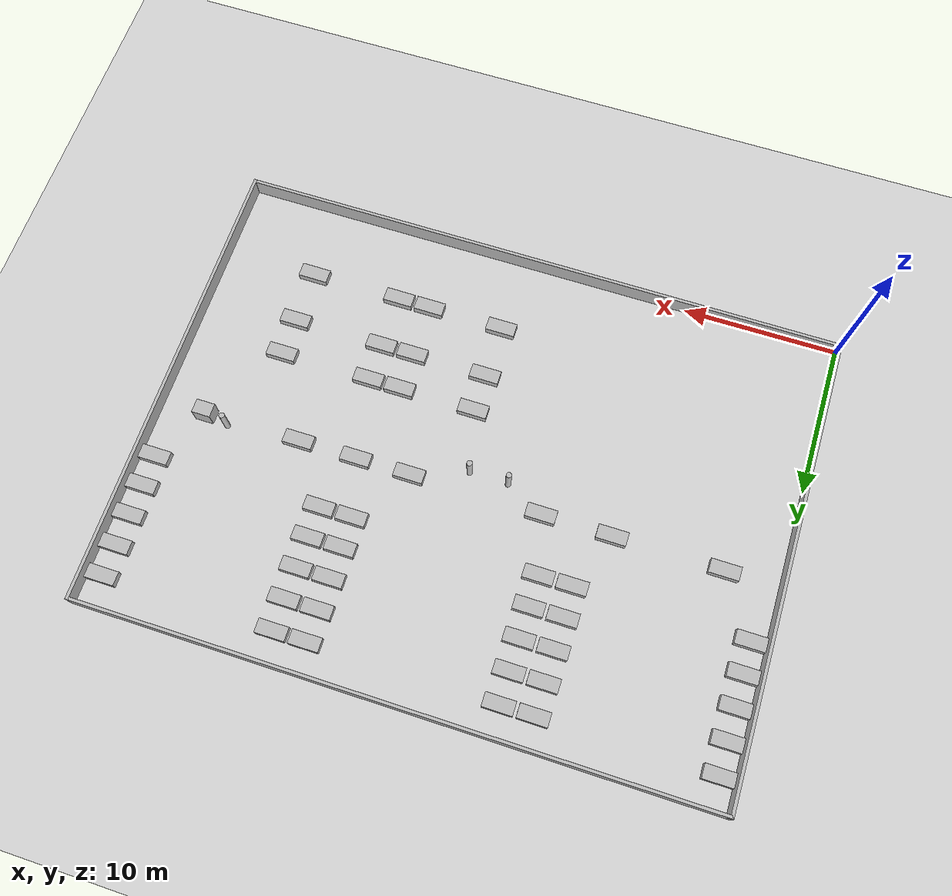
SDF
<?xml version="1.0"?>
<sdf version="1.9">
  <world name="hospital">
    <plugin filename="gz-sim-physics-system" name="gz::sim::systems::Physics"/>
    <plugin filename="gz-sim-sensors-system" name="gz::sim::systems::Sensors">
      <render_engine>ogre2</render_engine>
    </plugin>
    <plugin filename="gz-sim-user-commands-system" name="gz::sim::systems::UserCommands"/>
    <plugin filename="gz-sim-scene-broadcaster-system" name="gz::sim::systems::SceneBroadcaster"/>
    <plugin filename="gz-sim-contact-system" name="gz::sim::systems::Contact"/>

    <physics type="dart">
      <max_step_size>0.01</max_step_size>
      <real_time_factor>0</real_time_factor>
      <real_time_update_rate>0</real_time_update_rate>
    </physics>

    <scene>
      <ambient>0.52 0.53 0.56 1</ambient>
      <background>0.70 0.76 0.84 1</background>
      <shadows>true</shadows>
      <grid>false</grid>
    </scene>

    <light type="directional" name="sun">
      <pose>12 10 14 0 0 0</pose>
      <diffuse>0.70 0.69 0.66 1</diffuse>
      <specular>0.16 0.16 0.16 1</specular>
      <direction>-0.45 0.30 -0.84</direction>
      <cast_shadows>true</cast_shadows>
    </light>

    <model name="ground_plane">
      <static>true</static>
      <link name="link">
        <collision name="collision">
          <geometry><plane><normal>0 0 1</normal><size>200 200</size></plane></geometry>
        </collision>
        <visual name="visual">
          <pose>0 0 -0.03 0 0 0</pose>
          <cast_shadows>false</cast_shadows>
          <geometry><plane><normal>0 0 1</normal><size>200 200</size></plane></geometry>
          <material>
          <ambient>0.425 0.425 0.425 1.0</ambient>
          <diffuse>0.850 0.850 0.850 1.0</diffuse>
          <specular>0.14 0.14 0.14 1</specular>
          <emissive>0.000 0.000 0.000 1</emissive>
        </material>
        </visual>
      </link>
    </model>

    <model name="wall_0">
      <static>true</static>
      <pose>20.0 0.0 0.6 0 0 0</pose>
      <link name="link">
        <collision name="c"><geometry><box><size>40.2 0.2 1.2</size></box></geometry></collision>
        <visual name="v">
          <cast_shadows>true</cast_shadows>
          <geometry><box><size>40.2 0.2 1.2</size></box></geometry>
          <material>
          <ambient>0.375 0.375 0.375 1.0</ambient>
          <diffuse>0.750 0.750 0.750 1.0</diffuse>
          <specular>0.14 0.14 0.14 1</specular>
          <emissive>0.000 0.000 0.000 1</emissive>
        </material>
        </visual>
      </link>
    </model>
    <model name="wall_1">
      <static>true</static>
      <pose>20.0 30.0 0.6 0 0 0</pose>
      <link name="link">
        <collision name="c"><geometry><box><size>40.2 0.20000000000000284 1.2</size></box></geometry></collision>
        <visual name="v">
          <cast_shadows>true</cast_shadows>
          <geometry><box><size>40.2 0.20000000000000284 1.2</size></box></geometry>
          <material>
          <ambient>0.375 0.375 0.375 1.0</ambient>
          <diffuse>0.750 0.750 0.750 1.0</diffuse>
          <specular>0.14 0.14 0.14 1</specular>
          <emissive>0.000 0.000 0.000 1</emissive>
        </material>
        </visual>
      </link>
    </model>
    <model name="wall_2">
      <static>true</static>
      <pose>0.0 15.0 0.6 0 0 0</pose>
      <link name="link">
        <collision name="c"><geometry><box><size>0.2 30.200000000000003 1.2</size></box></geometry></collision>
        <visual name="v">
          <cast_shadows>true</cast_shadows>
          <geometry><box><size>0.2 30.200000000000003 1.2</size></box></geometry>
          <material>
          <ambient>0.375 0.375 0.375 1.0</ambient>
          <diffuse>0.750 0.750 0.750 1.0</diffuse>
          <specular>0.14 0.14 0.14 1</specular>
          <emissive>0.000 0.000 0.000 1</emissive>
        </material>
        </visual>
      </link>
    </model>
    <model name="wall_3">
      <static>true</static>
      <pose>40.0 15.0 0.6 0 0 0</pose>
      <link name="link">
        <collision name="c"><geometry><box><size>0.20000000000000284 30.200000000000003 1.2</size></box></geometry></collision>
        <visual name="v">
          <cast_shadows>true</cast_shadows>
          <geometry><box><size>0.20000000000000284 30.200000000000003 1.2</size></box></geometry>
          <material>
          <ambient>0.375 0.375 0.375 1.0</ambient>
          <diffuse>0.750 0.750 0.750 1.0</diffuse>
          <specular>0.14 0.14 0.14 1</specular>
          <emissive>0.000 0.000 0.000 1</emissive>
        </material>
        </visual>
      </link>
    </model>
    <model name="bed_0">
      <static>true</static>
      <pose>1.05 20.0 0.25 0 0 0</pose>
      <link name="link">
        <collision name="c"><geometry><box><size>1.9 0.8999999999999986 0.5</size></box></geometry></collision>
        <visual name="v">
          <cast_shadows>true</cast_shadows>
          <geometry><box><size>1.9 0.8999999999999986 0.5</size></box></geometry>
          <material>
          <ambient>0.375 0.375 0.375 1.0</ambient>
          <diffuse>0.750 0.750 0.750 1.0</diffuse>
          <specular>0.14 0.14 0.14 1</specular>
          <emissive>0.000 0.000 0.000 1</emissive>
        </material>
        </visual>
      </link>
    </model>
    <model name="bed_1">
      <static>true</static>
      <pose>11.95 20.0 0.25 0 0 0</pose>
      <link name="link">
        <collision name="c"><geometry><box><size>1.9000000000000004 0.8999999999999986 0.5</size></box></geometry></collision>
        <visual name="v">
          <cast_shadows>true</cast_shadows>
          <geometry><box><size>1.9000000000000004 0.8999999999999986 0.5</size></box></geometry>
          <material>
          <ambient>0.375 0.375 0.375 1.0</ambient>
          <diffuse>0.750 0.750 0.750 1.0</diffuse>
          <specular>0.14 0.14 0.14 1</specular>
          <emissive>0.000 0.000 0.000 1</emissive>
        </material>
        </visual>
      </link>
    </model>
    <model name="bed_2">
      <static>true</static>
      <pose>1.05 24.0 0.25 0 0 0</pose>
      <link name="link">
        <collision name="c"><geometry><box><size>1.9 0.8999999999999986 0.5</size></box></geometry></collision>
        <visual name="v">
          <cast_shadows>true</cast_shadows>
          <geometry><box><size>1.9 0.8999999999999986 0.5</size></box></geometry>
          <material>
          <ambient>0.375 0.375 0.375 1.0</ambient>
          <diffuse>0.750 0.750 0.750 1.0</diffuse>
          <specular>0.14 0.14 0.14 1</specular>
          <emissive>0.000 0.000 0.000 1</emissive>
        </material>
        </visual>
      </link>
    </model>
    <model name="bed_3">
      <static>true</static>
      <pose>11.95 24.0 0.25 0 0 0</pose>
      <link name="link">
        <collision name="c"><geometry><box><size>1.9000000000000004 0.8999999999999986 0.5</size></box></geometry></collision>
        <visual name="v">
          <cast_shadows>true</cast_shadows>
          <geometry><box><size>1.9000000000000004 0.8999999999999986 0.5</size></box></geometry>
          <material>
          <ambient>0.375 0.375 0.375 1.0</ambient>
          <diffuse>0.750 0.750 0.750 1.0</diffuse>
          <specular>0.14 0.14 0.14 1</specular>
          <emissive>0.000 0.000 0.000 1</emissive>
        </material>
        </visual>
      </link>
    </model>
    <model name="bed_4">
      <static>true</static>
      <pose>1.05 28.0 0.25 0 0 0</pose>
      <link name="link">
        <collision name="c"><geometry><box><size>1.9 0.8999999999999986 0.5</size></box></geometry></collision>
        <visual name="v">
          <cast_shadows>true</cast_shadows>
          <geometry><box><size>1.9 0.8999999999999986 0.5</size></box></geometry>
          <material>
          <ambient>0.375 0.375 0.375 1.0</ambient>
          <diffuse>0.750 0.750 0.750 1.0</diffuse>
          <specular>0.14 0.14 0.14 1</specular>
          <emissive>0.000 0.000 0.000 1</emissive>
        </material>
        </visual>
      </link>
    </model>
    <model name="bed_5">
      <static>true</static>
      <pose>11.95 28.0 0.25 0 0 0</pose>
      <link name="link">
        <collision name="c"><geometry><box><size>1.9000000000000004 0.8999999999999986 0.5</size></box></geometry></collision>
        <visual name="v">
          <cast_shadows>true</cast_shadows>
          <geometry><box><size>1.9000000000000004 0.8999999999999986 0.5</size></box></geometry>
          <material>
          <ambient>0.375 0.375 0.375 1.0</ambient>
          <diffuse>0.750 0.750 0.750 1.0</diffuse>
          <specular>0.14 0.14 0.14 1</specular>
          <emissive>0.000 0.000 0.000 1</emissive>
        </material>
        </visual>
      </link>
    </model>
    <model name="bed_6">
      <static>true</static>
      <pose>14.05 20.0 0.25 0 0 0</pose>
      <link name="link">
        <collision name="c"><geometry><box><size>1.9000000000000004 0.8999999999999986 0.5</size></box></geometry></collision>
        <visual name="v">
          <cast_shadows>true</cast_shadows>
          <geometry><box><size>1.9000000000000004 0.8999999999999986 0.5</size></box></geometry>
          <material>
          <ambient>0.375 0.375 0.375 1.0</ambient>
          <diffuse>0.750 0.750 0.750 1.0</diffuse>
          <specular>0.14 0.14 0.14 1</specular>
          <emissive>0.000 0.000 0.000 1</emissive>
        </material>
        </visual>
      </link>
    </model>
    <model name="bed_7">
      <static>true</static>
      <pose>25.95 20.0 0.25 0 0 0</pose>
      <link name="link">
        <collision name="c"><geometry><box><size>1.8999999999999986 0.8999999999999986 0.5</size></box></geometry></collision>
        <visual name="v">
          <cast_shadows>true</cast_shadows>
          <geometry><box><size>1.8999999999999986 0.8999999999999986 0.5</size></box></geometry>
          <material>
          <ambient>0.375 0.375 0.375 1.0</ambient>
          <diffuse>0.750 0.750 0.750 1.0</diffuse>
          <specular>0.14 0.14 0.14 1</specular>
          <emissive>0.000 0.000 0.000 1</emissive>
        </material>
        </visual>
      </link>
    </model>
    <model name="bed_8">
      <static>true</static>
      <pose>14.05 24.0 0.25 0 0 0</pose>
      <link name="link">
        <collision name="c"><geometry><box><size>1.9000000000000004 0.8999999999999986 0.5</size></box></geometry></collision>
        <visual name="v">
          <cast_shadows>true</cast_shadows>
          <geometry><box><size>1.9000000000000004 0.8999999999999986 0.5</size></box></geometry>
          <material>
          <ambient>0.375 0.375 0.375 1.0</ambient>
          <diffuse>0.750 0.750 0.750 1.0</diffuse>
          <specular>0.14 0.14 0.14 1</specular>
          <emissive>0.000 0.000 0.000 1</emissive>
        </material>
        </visual>
      </link>
    </model>
    <model name="bed_9">
      <static>true</static>
      <pose>25.95 24.0 0.25 0 0 0</pose>
      <link name="link">
        <collision name="c"><geometry><box><size>1.8999999999999986 0.8999999999999986 0.5</size></box></geometry></collision>
        <visual name="v">
          <cast_shadows>true</cast_shadows>
          <geometry><box><size>1.8999999999999986 0.8999999999999986 0.5</size></box></geometry>
          <material>
          <ambient>0.375 0.375 0.375 1.0</ambient>
          <diffuse>0.750 0.750 0.750 1.0</diffuse>
          <specular>0.14 0.14 0.14 1</specular>
          <emissive>0.000 0.000 0.000 1</emissive>
        </material>
        </visual>
      </link>
    </model>
    <model name="bed_10">
      <static>true</static>
      <pose>14.05 28.0 0.25 0 0 0</pose>
      <link name="link">
        <collision name="c"><geometry><box><size>1.9000000000000004 0.8999999999999986 0.5</size></box></geometry></collision>
        <visual name="v">
          <cast_shadows>true</cast_shadows>
          <geometry><box><size>1.9000000000000004 0.8999999999999986 0.5</size></box></geometry>
          <material>
          <ambient>0.375 0.375 0.375 1.0</ambient>
          <diffuse>0.750 0.750 0.750 1.0</diffuse>
          <specular>0.14 0.14 0.14 1</specular>
          <emissive>0.000 0.000 0.000 1</emissive>
        </material>
        </visual>
      </link>
    </model>
    <model name="bed_11">
      <static>true</static>
      <pose>25.95 28.0 0.25 0 0 0</pose>
      <link name="link">
        <collision name="c"><geometry><box><size>1.8999999999999986 0.8999999999999986 0.5</size></box></geometry></collision>
        <visual name="v">
          <cast_shadows>true</cast_shadows>
          <geometry><box><size>1.8999999999999986 0.8999999999999986 0.5</size></box></geometry>
          <material>
          <ambient>0.375 0.375 0.375 1.0</ambient>
          <diffuse>0.750 0.750 0.750 1.0</diffuse>
          <specular>0.14 0.14 0.14 1</specular>
          <emissive>0.000 0.000 0.000 1</emissive>
        </material>
        </visual>
      </link>
    </model>
    <model name="bed_12">
      <static>true</static>
      <pose>28.05 20.0 0.25 0 0 0</pose>
      <link name="link">
        <collision name="c"><geometry><box><size>1.8999999999999986 0.8999999999999986 0.5</size></box></geometry></collision>
        <visual name="v">
          <cast_shadows>true</cast_shadows>
          <geometry><box><size>1.8999999999999986 0.8999999999999986 0.5</size></box></geometry>
          <material>
          <ambient>0.375 0.375 0.375 1.0</ambient>
          <diffuse>0.750 0.750 0.750 1.0</diffuse>
          <specular>0.14 0.14 0.14 1</specular>
          <emissive>0.000 0.000 0.000 1</emissive>
        </material>
        </visual>
      </link>
    </model>
    <model name="bed_13">
      <static>true</static>
      <pose>38.95 20.0 0.25 0 0 0</pose>
      <link name="link">
        <collision name="c"><geometry><box><size>1.8999999999999986 0.8999999999999986 0.5</size></box></geometry></collision>
        <visual name="v">
          <cast_shadows>true</cast_shadows>
          <geometry><box><size>1.8999999999999986 0.8999999999999986 0.5</size></box></geometry>
          <material>
          <ambient>0.375 0.375 0.375 1.0</ambient>
          <diffuse>0.750 0.750 0.750 1.0</diffuse>
          <specular>0.14 0.14 0.14 1</specular>
          <emissive>0.000 0.000 0.000 1</emissive>
        </material>
        </visual>
      </link>
    </model>
    <model name="bed_14">
      <static>true</static>
      <pose>28.05 24.0 0.25 0 0 0</pose>
      <link name="link">
        <collision name="c"><geometry><box><size>1.8999999999999986 0.8999999999999986 0.5</size></box></geometry></collision>
        <visual name="v">
          <cast_shadows>true</cast_shadows>
          <geometry><box><size>1.8999999999999986 0.8999999999999986 0.5</size></box></geometry>
          <material>
          <ambient>0.375 0.375 0.375 1.0</ambient>
          <diffuse>0.750 0.750 0.750 1.0</diffuse>
          <specular>0.14 0.14 0.14 1</specular>
          <emissive>0.000 0.000 0.000 1</emissive>
        </material>
        </visual>
      </link>
    </model>
    <model name="bed_15">
      <static>true</static>
      <pose>38.95 24.0 0.25 0 0 0</pose>
      <link name="link">
        <collision name="c"><geometry><box><size>1.8999999999999986 0.8999999999999986 0.5</size></box></geometry></collision>
        <visual name="v">
          <cast_shadows>true</cast_shadows>
          <geometry><box><size>1.8999999999999986 0.8999999999999986 0.5</size></box></geometry>
          <material>
          <ambient>0.375 0.375 0.375 1.0</ambient>
          <diffuse>0.750 0.750 0.750 1.0</diffuse>
          <specular>0.14 0.14 0.14 1</specular>
          <emissive>0.000 0.000 0.000 1</emissive>
        </material>
        </visual>
      </link>
    </model>
    <model name="bed_16">
      <static>true</static>
      <pose>28.05 28.0 0.25 0 0 0</pose>
      <link name="link">
        <collision name="c"><geometry><box><size>1.8999999999999986 0.8999999999999986 0.5</size></box></geometry></collision>
        <visual name="v">
          <cast_shadows>true</cast_shadows>
          <geometry><box><size>1.8999999999999986 0.8999999999999986 0.5</size></box></geometry>
          <material>
          <ambient>0.375 0.375 0.375 1.0</ambient>
          <diffuse>0.750 0.750 0.750 1.0</diffuse>
          <specular>0.14 0.14 0.14 1</specular>
          <emissive>0.000 0.000 0.000 1</emissive>
        </material>
        </visual>
      </link>
    </model>
    <model name="bed_17">
      <static>true</static>
      <pose>38.95 28.0 0.25 0 0 0</pose>
      <link name="link">
        <collision name="c"><geometry><box><size>1.8999999999999986 0.8999999999999986 0.5</size></box></geometry></collision>
        <visual name="v">
          <cast_shadows>true</cast_shadows>
          <geometry><box><size>1.8999999999999986 0.8999999999999986 0.5</size></box></geometry>
          <material>
          <ambient>0.375 0.375 0.375 1.0</ambient>
          <diffuse>0.750 0.750 0.750 1.0</diffuse>
          <specular>0.14 0.14 0.14 1</specular>
          <emissive>0.000 0.000 0.000 1</emissive>
        </material>
        </visual>
      </link>
    </model>
    <model name="bed_18">
      <static>true</static>
      <pose>21.05 5.0 0.25 0 0 0</pose>
      <link name="link">
        <collision name="c"><geometry><box><size>1.8999999999999986 0.9000000000000004 0.5</size></box></geometry></collision>
        <visual name="v">
          <cast_shadows>true</cast_shadows>
          <geometry><box><size>1.8999999999999986 0.9000000000000004 0.5</size></box></geometry>
          <material>
          <ambient>0.375 0.375 0.375 1.0</ambient>
          <diffuse>0.750 0.750 0.750 1.0</diffuse>
          <specular>0.14 0.14 0.14 1</specular>
          <emissive>0.000 0.000 0.000 1</emissive>
        </material>
        </visual>
      </link>
    </model>
    <model name="bed_19">
      <static>true</static>
      <pose>25.95 5.0 0.25 0 0 0</pose>
      <link name="link">
        <collision name="c"><geometry><box><size>1.8999999999999986 0.9000000000000004 0.5</size></box></geometry></collision>
        <visual name="v">
          <cast_shadows>true</cast_shadows>
          <geometry><box><size>1.8999999999999986 0.9000000000000004 0.5</size></box></geometry>
          <material>
          <ambient>0.375 0.375 0.375 1.0</ambient>
          <diffuse>0.750 0.750 0.750 1.0</diffuse>
          <specular>0.14 0.14 0.14 1</specular>
          <emissive>0.000 0.000 0.000 1</emissive>
        </material>
        </visual>
      </link>
    </model>
    <model name="bed_20">
      <static>true</static>
      <pose>21.05 8.5 0.25 0 0 0</pose>
      <link name="link">
        <collision name="c"><geometry><box><size>1.8999999999999986 0.8999999999999986 0.5</size></box></geometry></collision>
        <visual name="v">
          <cast_shadows>true</cast_shadows>
          <geometry><box><size>1.8999999999999986 0.8999999999999986 0.5</size></box></geometry>
          <material>
          <ambient>0.375 0.375 0.375 1.0</ambient>
          <diffuse>0.750 0.750 0.750 1.0</diffuse>
          <specular>0.14 0.14 0.14 1</specular>
          <emissive>0.000 0.000 0.000 1</emissive>
        </material>
        </visual>
      </link>
    </model>
    <model name="bed_21">
      <static>true</static>
      <pose>25.95 8.5 0.25 0 0 0</pose>
      <link name="link">
        <collision name="c"><geometry><box><size>1.8999999999999986 0.8999999999999986 0.5</size></box></geometry></collision>
        <visual name="v">
          <cast_shadows>true</cast_shadows>
          <geometry><box><size>1.8999999999999986 0.8999999999999986 0.5</size></box></geometry>
          <material>
          <ambient>0.375 0.375 0.375 1.0</ambient>
          <diffuse>0.750 0.750 0.750 1.0</diffuse>
          <specular>0.14 0.14 0.14 1</specular>
          <emissive>0.000 0.000 0.000 1</emissive>
        </material>
        </visual>
      </link>
    </model>
    <model name="bed_22">
      <static>true</static>
      <pose>28.05 5.0 0.25 0 0 0</pose>
      <link name="link">
        <collision name="c"><geometry><box><size>1.8999999999999986 0.9000000000000004 0.5</size></box></geometry></collision>
        <visual name="v">
          <cast_shadows>true</cast_shadows>
          <geometry><box><size>1.8999999999999986 0.9000000000000004 0.5</size></box></geometry>
          <material>
          <ambient>0.375 0.375 0.375 1.0</ambient>
          <diffuse>0.750 0.750 0.750 1.0</diffuse>
          <specular>0.14 0.14 0.14 1</specular>
          <emissive>0.000 0.000 0.000 1</emissive>
        </material>
        </visual>
      </link>
    </model>
    <model name="bed_23">
      <static>true</static>
      <pose>33.95 5.0 0.25 0 0 0</pose>
      <link name="link">
        <collision name="c"><geometry><box><size>1.8999999999999986 0.9000000000000004 0.5</size></box></geometry></collision>
        <visual name="v">
          <cast_shadows>true</cast_shadows>
          <geometry><box><size>1.8999999999999986 0.9000000000000004 0.5</size></box></geometry>
          <material>
          <ambient>0.375 0.375 0.375 1.0</ambient>
          <diffuse>0.750 0.750 0.750 1.0</diffuse>
          <specular>0.14 0.14 0.14 1</specular>
          <emissive>0.000 0.000 0.000 1</emissive>
        </material>
        </visual>
      </link>
    </model>
    <model name="bed_24">
      <static>true</static>
      <pose>28.05 8.5 0.25 0 0 0</pose>
      <link name="link">
        <collision name="c"><geometry><box><size>1.8999999999999986 0.8999999999999986 0.5</size></box></geometry></collision>
        <visual name="v">
          <cast_shadows>true</cast_shadows>
          <geometry><box><size>1.8999999999999986 0.8999999999999986 0.5</size></box></geometry>
          <material>
          <ambient>0.375 0.375 0.375 1.0</ambient>
          <diffuse>0.750 0.750 0.750 1.0</diffuse>
          <specular>0.14 0.14 0.14 1</specular>
          <emissive>0.000 0.000 0.000 1</emissive>
        </material>
        </visual>
      </link>
    </model>
    <model name="bed_25">
      <static>true</static>
      <pose>33.95 8.5 0.25 0 0 0</pose>
      <link name="link">
        <collision name="c"><geometry><box><size>1.8999999999999986 0.8999999999999986 0.5</size></box></geometry></collision>
        <visual name="v">
          <cast_shadows>true</cast_shadows>
          <geometry><box><size>1.8999999999999986 0.8999999999999986 0.5</size></box></geometry>
          <material>
          <ambient>0.375 0.375 0.375 1.0</ambient>
          <diffuse>0.750 0.750 0.750 1.0</diffuse>
          <specular>0.14 0.14 0.14 1</specular>
          <emissive>0.000 0.000 0.000 1</emissive>
        </material>
        </visual>
      </link>
    </model>
    <model name="bed_26">
      <static>true</static>
      <pose>15.0 16.3 0.25 0 0 0</pose>
      <link name="link">
        <collision name="c"><geometry><box><size>1.8999999999999986 0.9000000000000004 0.5</size></box></geometry></collision>
        <visual name="v">
          <cast_shadows>true</cast_shadows>
          <geometry><box><size>1.8999999999999986 0.9000000000000004 0.5</size></box></geometry>
          <material>
          <ambient>0.375 0.375 0.375 1.0</ambient>
          <diffuse>0.750 0.750 0.750 1.0</diffuse>
          <specular>0.14 0.14 0.14 1</specular>
          <emissive>0.000 0.000 0.000 1</emissive>
        </material>
        </visual>
      </link>
    </model>
    <model name="bed_27">
      <static>true</static>
      <pose>23.5 16.3 0.25 0 0 0</pose>
      <link name="link">
        <collision name="c"><geometry><box><size>1.8999999999999986 0.9000000000000004 0.5</size></box></geometry></collision>
        <visual name="v">
          <cast_shadows>true</cast_shadows>
          <geometry><box><size>1.8999999999999986 0.9000000000000004 0.5</size></box></geometry>
          <material>
          <ambient>0.375 0.375 0.375 1.0</ambient>
          <diffuse>0.750 0.750 0.750 1.0</diffuse>
          <specular>0.14 0.14 0.14 1</specular>
          <emissive>0.000 0.000 0.000 1</emissive>
        </material>
        </visual>
      </link>
    </model>
    <model name="bed_28">
      <static>true</static>
      <pose>3.5 16.3 0.25 0 0 0</pose>
      <link name="link">
        <collision name="c"><geometry><box><size>1.9000000000000004 0.9000000000000004 0.5</size></box></geometry></collision>
        <visual name="v">
          <cast_shadows>true</cast_shadows>
          <geometry><box><size>1.9000000000000004 0.9000000000000004 0.5</size></box></geometry>
          <material>
          <ambient>0.375 0.375 0.375 1.0</ambient>
          <diffuse>0.750 0.750 0.750 1.0</diffuse>
          <specular>0.14 0.14 0.14 1</specular>
          <emissive>0.000 0.000 0.000 1</emissive>
        </material>
        </visual>
      </link>
    </model>
    <model name="bed_29">
      <static>true</static>
      <pose>10.5 16.3 0.25 0 0 0</pose>
      <link name="link">
        <collision name="c"><geometry><box><size>1.8999999999999986 0.9000000000000004 0.5</size></box></geometry></collision>
        <visual name="v">
          <cast_shadows>true</cast_shadows>
          <geometry><box><size>1.8999999999999986 0.9000000000000004 0.5</size></box></geometry>
          <material>
          <ambient>0.375 0.375 0.375 1.0</ambient>
          <diffuse>0.750 0.750 0.750 1.0</diffuse>
          <specular>0.14 0.14 0.14 1</specular>
          <emissive>0.000 0.000 0.000 1</emissive>
        </material>
        </visual>
      </link>
    </model>
    <model name="bed_30">
      <static>true</static>
      <pose>27.0 16.3 0.25 0 0 0</pose>
      <link name="link">
        <collision name="c"><geometry><box><size>1.8999999999999986 0.9000000000000004 0.5</size></box></geometry></collision>
        <visual name="v">
          <cast_shadows>true</cast_shadows>
          <geometry><box><size>1.8999999999999986 0.9000000000000004 0.5</size></box></geometry>
          <material>
          <ambient>0.375 0.375 0.375 1.0</ambient>
          <diffuse>0.750 0.750 0.750 1.0</diffuse>
          <specular>0.14 0.14 0.14 1</specular>
          <emissive>0.000 0.000 0.000 1</emissive>
        </material>
        </visual>
      </link>
    </model>
    <model name="bed_31">
      <static>true</static>
      <pose>30.8 16.3 0.25 0 0 0</pose>
      <link name="link">
        <collision name="c"><geometry><box><size>1.8999999999999986 0.9000000000000004 0.5</size></box></geometry></collision>
        <visual name="v">
          <cast_shadows>true</cast_shadows>
          <geometry><box><size>1.8999999999999986 0.9000000000000004 0.5</size></box></geometry>
          <material>
          <ambient>0.375 0.375 0.375 1.0</ambient>
          <diffuse>0.750 0.750 0.750 1.0</diffuse>
          <specular>0.14 0.14 0.14 1</specular>
          <emissive>0.000 0.000 0.000 1</emissive>
        </material>
        </visual>
      </link>
    </model>
    <model name="bed_32">
      <static>true</static>
      <pose>1.05 22.0 0.25 0 0 0</pose>
      <link name="link">
        <collision name="c"><geometry><box><size>1.9 0.8999999999999986 0.5</size></box></geometry></collision>
        <visual name="v">
          <cast_shadows>true</cast_shadows>
          <geometry><box><size>1.9 0.8999999999999986 0.5</size></box></geometry>
          <material>
          <ambient>0.375 0.375 0.375 1.0</ambient>
          <diffuse>0.750 0.750 0.750 1.0</diffuse>
          <specular>0.14 0.14 0.14 1</specular>
          <emissive>0.000 0.000 0.000 1</emissive>
        </material>
        </visual>
      </link>
    </model>
    <model name="bed_33">
      <static>true</static>
      <pose>11.95 22.0 0.25 0 0 0</pose>
      <link name="link">
        <collision name="c"><geometry><box><size>1.9000000000000004 0.8999999999999986 0.5</size></box></geometry></collision>
        <visual name="v">
          <cast_shadows>true</cast_shadows>
          <geometry><box><size>1.9000000000000004 0.8999999999999986 0.5</size></box></geometry>
          <material>
          <ambient>0.375 0.375 0.375 1.0</ambient>
          <diffuse>0.750 0.750 0.750 1.0</diffuse>
          <specular>0.14 0.14 0.14 1</specular>
          <emissive>0.000 0.000 0.000 1</emissive>
        </material>
        </visual>
      </link>
    </model>
    <model name="bed_34">
      <static>true</static>
      <pose>1.05 26.0 0.25 0 0 0</pose>
      <link name="link">
        <collision name="c"><geometry><box><size>1.9 0.8999999999999986 0.5</size></box></geometry></collision>
        <visual name="v">
          <cast_shadows>true</cast_shadows>
          <geometry><box><size>1.9 0.8999999999999986 0.5</size></box></geometry>
          <material>
          <ambient>0.375 0.375 0.375 1.0</ambient>
          <diffuse>0.750 0.750 0.750 1.0</diffuse>
          <specular>0.14 0.14 0.14 1</specular>
          <emissive>0.000 0.000 0.000 1</emissive>
        </material>
        </visual>
      </link>
    </model>
    <model name="bed_35">
      <static>true</static>
      <pose>11.95 26.0 0.25 0 0 0</pose>
      <link name="link">
        <collision name="c"><geometry><box><size>1.9000000000000004 0.8999999999999986 0.5</size></box></geometry></collision>
        <visual name="v">
          <cast_shadows>true</cast_shadows>
          <geometry><box><size>1.9000000000000004 0.8999999999999986 0.5</size></box></geometry>
          <material>
          <ambient>0.375 0.375 0.375 1.0</ambient>
          <diffuse>0.750 0.750 0.750 1.0</diffuse>
          <specular>0.14 0.14 0.14 1</specular>
          <emissive>0.000 0.000 0.000 1</emissive>
        </material>
        </visual>
      </link>
    </model>
    <model name="bed_36">
      <static>true</static>
      <pose>14.05 22.0 0.25 0 0 0</pose>
      <link name="link">
        <collision name="c"><geometry><box><size>1.9000000000000004 0.8999999999999986 0.5</size></box></geometry></collision>
        <visual name="v">
          <cast_shadows>true</cast_shadows>
          <geometry><box><size>1.9000000000000004 0.8999999999999986 0.5</size></box></geometry>
          <material>
          <ambient>0.375 0.375 0.375 1.0</ambient>
          <diffuse>0.750 0.750 0.750 1.0</diffuse>
          <specular>0.14 0.14 0.14 1</specular>
          <emissive>0.000 0.000 0.000 1</emissive>
        </material>
        </visual>
      </link>
    </model>
    <model name="bed_37">
      <static>true</static>
      <pose>25.95 22.0 0.25 0 0 0</pose>
      <link name="link">
        <collision name="c"><geometry><box><size>1.8999999999999986 0.8999999999999986 0.5</size></box></geometry></collision>
        <visual name="v">
          <cast_shadows>true</cast_shadows>
          <geometry><box><size>1.8999999999999986 0.8999999999999986 0.5</size></box></geometry>
          <material>
          <ambient>0.375 0.375 0.375 1.0</ambient>
          <diffuse>0.750 0.750 0.750 1.0</diffuse>
          <specular>0.14 0.14 0.14 1</specular>
          <emissive>0.000 0.000 0.000 1</emissive>
        </material>
        </visual>
      </link>
    </model>
    <model name="bed_38">
      <static>true</static>
      <pose>14.05 26.0 0.25 0 0 0</pose>
      <link name="link">
        <collision name="c"><geometry><box><size>1.9000000000000004 0.8999999999999986 0.5</size></box></geometry></collision>
        <visual name="v">
          <cast_shadows>true</cast_shadows>
          <geometry><box><size>1.9000000000000004 0.8999999999999986 0.5</size></box></geometry>
          <material>
          <ambient>0.375 0.375 0.375 1.0</ambient>
          <diffuse>0.750 0.750 0.750 1.0</diffuse>
          <specular>0.14 0.14 0.14 1</specular>
          <emissive>0.000 0.000 0.000 1</emissive>
        </material>
        </visual>
      </link>
    </model>
    <model name="bed_39">
      <static>true</static>
      <pose>25.95 26.0 0.25 0 0 0</pose>
      <link name="link">
        <collision name="c"><geometry><box><size>1.8999999999999986 0.8999999999999986 0.5</size></box></geometry></collision>
        <visual name="v">
          <cast_shadows>true</cast_shadows>
          <geometry><box><size>1.8999999999999986 0.8999999999999986 0.5</size></box></geometry>
          <material>
          <ambient>0.375 0.375 0.375 1.0</ambient>
          <diffuse>0.750 0.750 0.750 1.0</diffuse>
          <specular>0.14 0.14 0.14 1</specular>
          <emissive>0.000 0.000 0.000 1</emissive>
        </material>
        </visual>
      </link>
    </model>
    <model name="bed_40">
      <static>true</static>
      <pose>28.05 22.0 0.25 0 0 0</pose>
      <link name="link">
        <collision name="c"><geometry><box><size>1.8999999999999986 0.8999999999999986 0.5</size></box></geometry></collision>
        <visual name="v">
          <cast_shadows>true</cast_shadows>
          <geometry><box><size>1.8999999999999986 0.8999999999999986 0.5</size></box></geometry>
          <material>
          <ambient>0.375 0.375 0.375 1.0</ambient>
          <diffuse>0.750 0.750 0.750 1.0</diffuse>
          <specular>0.14 0.14 0.14 1</specular>
          <emissive>0.000 0.000 0.000 1</emissive>
        </material>
        </visual>
      </link>
    </model>
    <model name="bed_41">
      <static>true</static>
      <pose>38.95 22.0 0.25 0 0 0</pose>
      <link name="link">
        <collision name="c"><geometry><box><size>1.8999999999999986 0.8999999999999986 0.5</size></box></geometry></collision>
        <visual name="v">
          <cast_shadows>true</cast_shadows>
          <geometry><box><size>1.8999999999999986 0.8999999999999986 0.5</size></box></geometry>
          <material>
          <ambient>0.375 0.375 0.375 1.0</ambient>
          <diffuse>0.750 0.750 0.750 1.0</diffuse>
          <specular>0.14 0.14 0.14 1</specular>
          <emissive>0.000 0.000 0.000 1</emissive>
        </material>
        </visual>
      </link>
    </model>
    <model name="bed_42">
      <static>true</static>
      <pose>28.05 26.0 0.25 0 0 0</pose>
      <link name="link">
        <collision name="c"><geometry><box><size>1.8999999999999986 0.8999999999999986 0.5</size></box></geometry></collision>
        <visual name="v">
          <cast_shadows>true</cast_shadows>
          <geometry><box><size>1.8999999999999986 0.8999999999999986 0.5</size></box></geometry>
          <material>
          <ambient>0.375 0.375 0.375 1.0</ambient>
          <diffuse>0.750 0.750 0.750 1.0</diffuse>
          <specular>0.14 0.14 0.14 1</specular>
          <emissive>0.000 0.000 0.000 1</emissive>
        </material>
        </visual>
      </link>
    </model>
    <model name="bed_43">
      <static>true</static>
      <pose>38.95 26.0 0.25 0 0 0</pose>
      <link name="link">
        <collision name="c"><geometry><box><size>1.8999999999999986 0.8999999999999986 0.5</size></box></geometry></collision>
        <visual name="v">
          <cast_shadows>true</cast_shadows>
          <geometry><box><size>1.8999999999999986 0.8999999999999986 0.5</size></box></geometry>
          <material>
          <ambient>0.375 0.375 0.375 1.0</ambient>
          <diffuse>0.750 0.750 0.750 1.0</diffuse>
          <specular>0.14 0.14 0.14 1</specular>
          <emissive>0.000 0.000 0.000 1</emissive>
        </material>
        </visual>
      </link>
    </model>
    <model name="bed_44">
      <static>true</static>
      <pose>21.05 11.0 0.25 0 0 0</pose>
      <link name="link">
        <collision name="c"><geometry><box><size>1.8999999999999986 0.8999999999999986 0.5</size></box></geometry></collision>
        <visual name="v">
          <cast_shadows>true</cast_shadows>
          <geometry><box><size>1.8999999999999986 0.8999999999999986 0.5</size></box></geometry>
          <material>
          <ambient>0.375 0.375 0.375 1.0</ambient>
          <diffuse>0.750 0.750 0.750 1.0</diffuse>
          <specular>0.14 0.14 0.14 1</specular>
          <emissive>0.000 0.000 0.000 1</emissive>
        </material>
        </visual>
      </link>
    </model>
    <model name="bed_45">
      <static>true</static>
      <pose>25.95 11.0 0.25 0 0 0</pose>
      <link name="link">
        <collision name="c"><geometry><box><size>1.8999999999999986 0.8999999999999986 0.5</size></box></geometry></collision>
        <visual name="v">
          <cast_shadows>true</cast_shadows>
          <geometry><box><size>1.8999999999999986 0.8999999999999986 0.5</size></box></geometry>
          <material>
          <ambient>0.375 0.375 0.375 1.0</ambient>
          <diffuse>0.750 0.750 0.750 1.0</diffuse>
          <specular>0.14 0.14 0.14 1</specular>
          <emissive>0.000 0.000 0.000 1</emissive>
        </material>
        </visual>
      </link>
    </model>
    <model name="bed_46">
      <static>true</static>
      <pose>28.05 11.0 0.25 0 0 0</pose>
      <link name="link">
        <collision name="c"><geometry><box><size>1.8999999999999986 0.8999999999999986 0.5</size></box></geometry></collision>
        <visual name="v">
          <cast_shadows>true</cast_shadows>
          <geometry><box><size>1.8999999999999986 0.8999999999999986 0.5</size></box></geometry>
          <material>
          <ambient>0.375 0.375 0.375 1.0</ambient>
          <diffuse>0.750 0.750 0.750 1.0</diffuse>
          <specular>0.14 0.14 0.14 1</specular>
          <emissive>0.000 0.000 0.000 1</emissive>
        </material>
        </visual>
      </link>
    </model>
    <model name="bed_47">
      <static>true</static>
      <pose>33.95 11.0 0.25 0 0 0</pose>
      <link name="link">
        <collision name="c"><geometry><box><size>1.8999999999999986 0.8999999999999986 0.5</size></box></geometry></collision>
        <visual name="v">
          <cast_shadows>true</cast_shadows>
          <geometry><box><size>1.8999999999999986 0.8999999999999986 0.5</size></box></geometry>
          <material>
          <ambient>0.375 0.375 0.375 1.0</ambient>
          <diffuse>0.750 0.750 0.750 1.0</diffuse>
          <specular>0.14 0.14 0.14 1</specular>
          <emissive>0.000 0.000 0.000 1</emissive>
        </material>
        </visual>
      </link>
    </model>
    <model name="nurse_desk">
      <static>true</static>
      <pose>37.0 16.4 0.6 0 0 0</pose>
      <link name="link">
        <collision name="c"><geometry><box><size>1.2000000000000028 0.9000000000000021 1.2</size></box></geometry></collision>
        <visual name="v">
          <cast_shadows>true</cast_shadows>
          <geometry><box><size>1.2000000000000028 0.9000000000000021 1.2</size></box></geometry>
          <material>
          <ambient>0.375 0.375 0.375 1.0</ambient>
          <diffuse>0.750 0.750 0.750 1.0</diffuse>
          <specular>0.14 0.14 0.14 1</specular>
          <emissive>0.000 0.000 0.000 1</emissive>
        </material>
        </visual>
      </link>
    </model>
    <model name="person_0">
      <static>true</static>
      <pose>20.0 15.0 0.9 0 0 0</pose>
      <link name="link">
        <collision name="c"><geometry><cylinder><radius>0.18</radius><length>1.8</length></cylinder></geometry></collision>
        <visual name="v"><geometry><cylinder><radius>0.18</radius><length>1.8</length></cylinder></geometry><material>
          <ambient>0.375 0.375 0.375 1.0</ambient>
          <diffuse>0.750 0.750 0.750 1.0</diffuse>
          <specular>0.14 0.14 0.14 1</specular>
          <emissive>0.000 0.000 0.000 1</emissive>
        </material></visual>
      </link>
    </model>
    <model name="person_1">
      <static>true</static>
      <pose>35.5 16.7 0.9 0 0 0</pose>
      <link name="link">
        <collision name="c"><geometry><cylinder><radius>0.18</radius><length>1.8</length></cylinder></geometry></collision>
        <visual name="v"><geometry><cylinder><radius>0.18</radius><length>1.8</length></cylinder></geometry><material>
          <ambient>0.375 0.375 0.375 1.0</ambient>
          <diffuse>0.750 0.750 0.750 1.0</diffuse>
          <specular>0.14 0.14 0.14 1</specular>
          <emissive>0.000 0.000 0.000 1</emissive>
        </material></visual>
      </link>
    </model>
    <model name="person_2">
      <static>true</static>
      <pose>17.5 15.0 0.9 0 0 0</pose>
      <link name="link">
        <collision name="c"><geometry><cylinder><radius>0.18</radius><length>1.8</length></cylinder></geometry></collision>
        <visual name="v"><geometry><cylinder><radius>0.18</radius><length>1.8</length></cylinder></geometry><material>
          <ambient>0.375 0.375 0.375 1.0</ambient>
          <diffuse>0.750 0.750 0.750 1.0</diffuse>
          <specular>0.14 0.14 0.14 1</specular>
          <emissive>0.000 0.000 0.000 1</emissive>
        </material></visual>
      </link>
    </model>
  </world>
</sdf>
